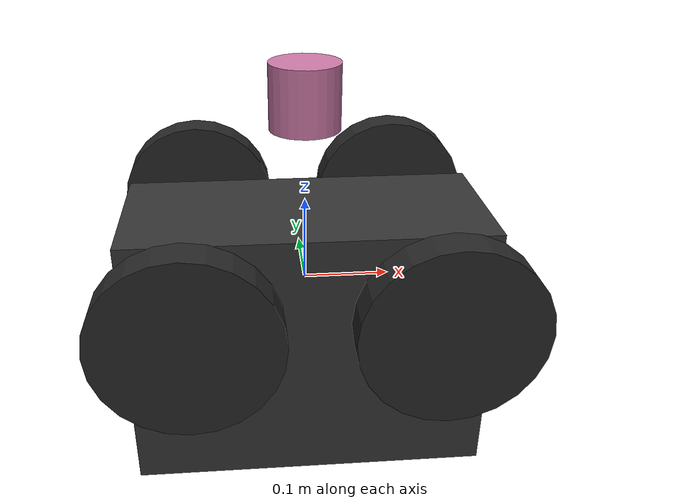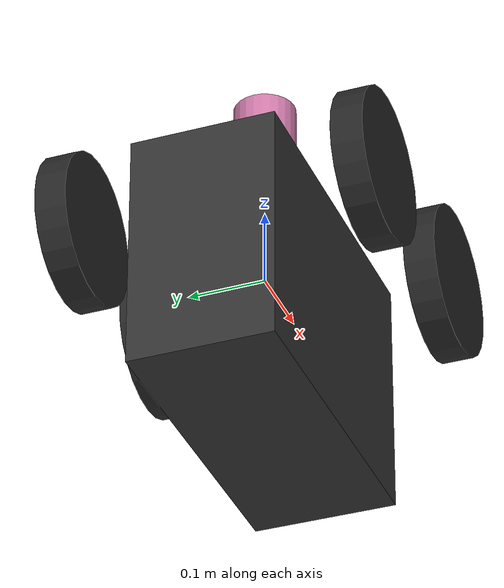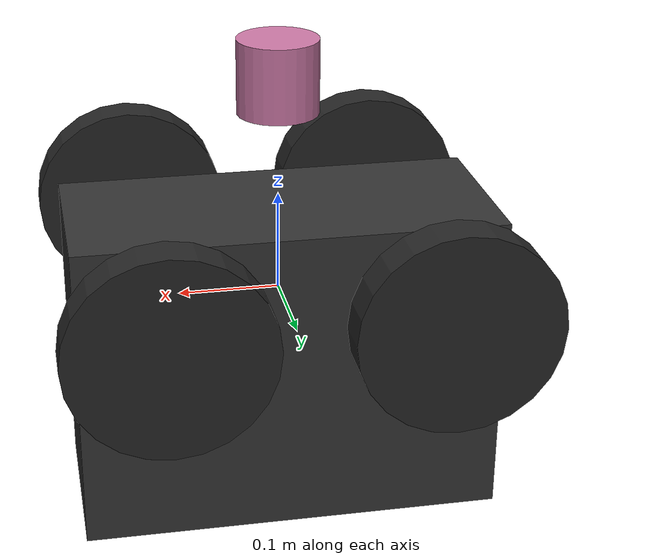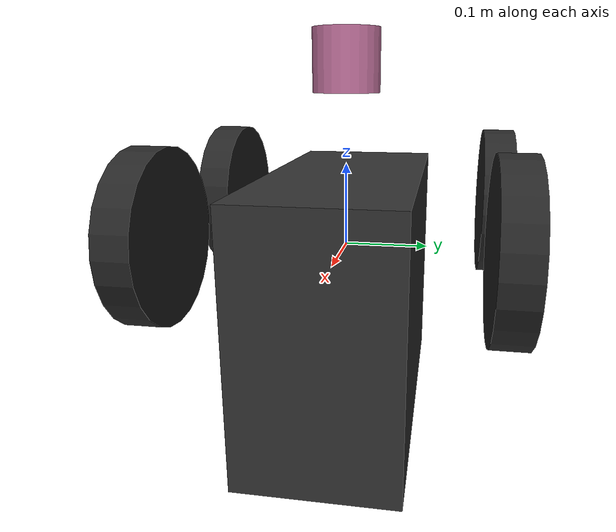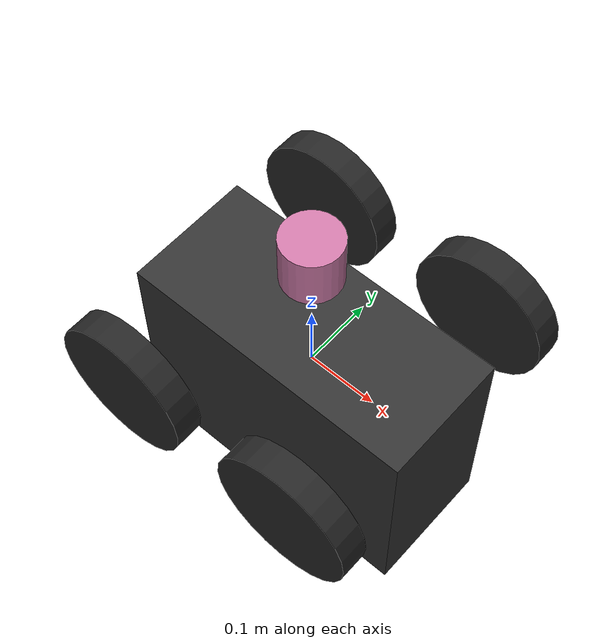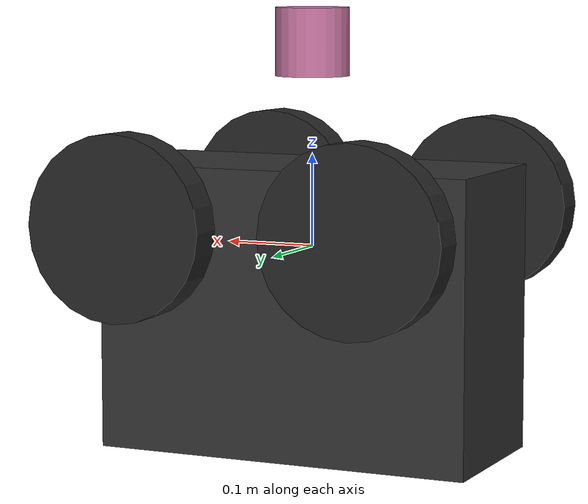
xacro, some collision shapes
<?xml version="1.0"?>
<robot name="rover" xmlns:xacro="http://www.ros.org/wiki/xacro">
  <xacro:property name="PI" value="3.1415926535897931" />

  <xacro:property name="wheelbase" value="0.262" />
  <xacro:property name="track" value="0.37559" />
  <xacro:property name="wheel_vertical_offset" value="0.0345" />
  <xacro:property name="footprint_vertical_offset" value="-0.0655" />

  <xacro:property name="wheel_radius" value="0.098" />
  <xacro:property name="wheel_width" value="0.040" />

  <xacro:property name="chassis_length" value="0.420" />
  <xacro:property name="chassis_width" value="0.310" />
  <xacro:property name="chassis_height" value="0.184" />

  <xacro:property name="dummy_inertia" value="1e-09"/>

  <xacro:property name="mount_spacing" value="0.120" />

  <material name="dark_grey"><color rgba="0.2 0.2 0.2 1.0" /></material>
  <material name="light_grey"><color rgba="0.4 0.4 0.4 1.0" /></material>
  <material name="yellow"><color rgba="0.8 0.8 0.0 1.0" /></material>
  <material name="black"><color rgba="0.15 0.15 0.15 1.0" /></material>

  <xacro:macro name="wheel" params="prefix *joint_pose">

    <link name="${prefix}_wheel_link">
      <visual>
        <origin xyz="0 0 0" rpy="${PI/2} 0 0"/>
        <geometry>
          <cylinder radius="${wheel_radius}" length="${wheel_width}"/>
        </geometry>
        <material name="black" />
      </visual>
      <collision>
        <origin xyz="0 0 0" rpy="${PI/2} 0 0"/>
        <geometry>
          <cylinder radius="${wheel_radius}" length="${wheel_width}"/>
        </geometry>
      </collision>
      <inertial>
        <origin xyz="0 0 0" rpy="0 0 0"/>
        <mass value="0.477"/>
        <inertia
          ixx="0.0013" ixy="0" ixz="0"
          iyy="0.0024" iyz="0"
          izz="0.0013"/>
      </inertial>
    </link>

    <gazebo reference="${prefix}_wheel_link">
      <material>Gazebo/DarkGrey</material>
      <selfCollide>false</selfCollide>
      <mu1 value="0.5"/>
      <mu2 value="0.5"/>
      <kp value="10000000.0" />
      <kd value="1" />
      <fdir1 value="1 0 0"/>
    </gazebo>

    <joint name="${prefix}_wheel" type="continuous">
      <parent link="chassis_link"/>
      <child link="${prefix}_wheel_link" />
      <xacro:insert_block name="joint_pose" />
      <axis xyz="0 1 0" />
    </joint>

    <!-- In reality, Jackal has only two motors, one per side. However, it's more
         straightforward for Gazebo to simulate as if there's an actuator per wheel. -->
    <transmission name="${prefix}_wheel_trans">
      <type>transmission_interface/SimpleTransmission</type>
      <joint name="${prefix}_wheel">
        <hardwareInterface>hardware_interface/VelocityJointInterface</hardwareInterface>
      </joint>
      <actuator name="${prefix}_actuator">
        <mechanicalReduction>1</mechanicalReduction>
      </actuator>
    </transmission>
  </xacro:macro>

  <xacro:wheel prefix="front_left">
    <origin xyz="${wheelbase/2} ${track/2} ${wheel_vertical_offset}" rpy="0 0 0" />
  </xacro:wheel>
  <xacro:wheel prefix="front_right">
    <origin xyz="${wheelbase/2} ${-track/2} ${wheel_vertical_offset}" rpy="0 0 0" />
  </xacro:wheel>
  <xacro:wheel prefix="rear_left">
    <origin xyz="${-wheelbase/2} ${track/2} ${wheel_vertical_offset}" rpy="0 0 0" />
  </xacro:wheel>
  <xacro:wheel prefix="rear_right">
    <origin xyz="${-wheelbase/2} ${-track/2} ${wheel_vertical_offset}" rpy="0 0 0" />
  </xacro:wheel>

  <link name="base_link"></link>

  <joint name="base_link_joint" type="fixed">
    <origin xyz="0 0 0" rpy="0 0 0" />
    <parent link="base_link"/>
    <child link="chassis_link" />
  </joint>

  <link name="chassis_link">
    <visual>
      <origin xyz="0 0 ${footprint_vertical_offset}" rpy="${PI/2} 0 0"/>
      <geometry>
        <box size="${chassis_length} ${chassis_width} ${chassis_height}"/>
      </geometry>
      <material name="dark_grey" />
    </visual>
    <collision>
      <origin xyz="0 0 ${chassis_height/2}"/>
      <geometry>
        <box size="${chassis_length} ${chassis_width} ${chassis_height}"/>
      </geometry>
    </collision>
    <inertial>
      <!-- Center of mass -->
      <origin xyz="0.012  0.002 0.067" rpy="0 0 0"/>
      <mass value="16.523"/>
      <!-- Moments of inertia: ( chassis without wheels ) -->
      <inertia
        ixx="0.3136" ixy="-0.0008" ixz="0.0164"
        iyy="0.3922" iyz="-0.0009"
        izz="0.4485"/>
      </inertial>
  </link>

  <!-- Bring in simulation data for Gazebo. -->
  <xacro:include filename="$(find rover_description)/urdf/rover.gazebo" />

  <xacro:include filename="$(find rover_description)/urdf/OS1-64.urdf.xacro"/>
  <xacro:OS1-64 parent="chassis_link" name="os1_sensor" hz="10" samples="220">
    <origin xyz="0 0 ${chassis_height}" rpy="0 0 0" />
  </xacro:OS1-64>

</robot>

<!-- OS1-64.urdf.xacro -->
<robot xmlns:xacro="http://www.ros.org/wiki/xacro" name="OS1-64">
  <xacro:property name="M_PI" value="3.1415926535897931" />
  <xacro:macro name="OS1-64" params="*origin parent:=base_link name:=os1_sensor topic_points:=/os1_cloud_node/points topic_imu:=/os1_cloud_node/imu hz:=10 lasers:=64 samples:=512 min_range:=0.9 max_range:=75.0 noise:=0.008 min_angle:=-${M_PI} max_angle:=${M_PI} lidar_link:=os1_lidar imu_link:=os1_imu vfov_min:=-.26 vfov_max:=.26">

    <joint name="${name}_mount_joint" type="fixed">
      <xacro:insert_block name="origin" />
      <parent link="${parent}"/>
      <child link="${name}"/>
    </joint>

    <link name="${name}">
      <inertial>
         <mass value="0.33"/>
         <origin xyz="0 0 0.0365" rpy="0 0 0" />
         <inertia ixx="0.000241148" ixy="0" ixz="0"
          iyy="0.000241148" iyz="0" izz="0.000264"/>
      </inertial>
      <collision name="base_collision">
         <origin xyz="0 0 0.0365" rpy="0 0 0" />
         <geometry>
 	        <cylinder radius="0.04" length="0.073"/>
         </geometry>
      </collision>
      <visual name="base_visual">
         <origin xyz="0 0 0.0" rpy="0 0 1.5707" />
         <geometry>
	         <mesh filename="package://rover_description/meshes/os1_64.dae" />
         </geometry>
      </visual>
    </link>

    <link name="${imu_link}" />

    <link name="${lidar_link}" />

    <joint name="${name}_imu_link_joint" type="fixed">
      <parent link="${name}" />
      <child link="${imu_link}" />
      <origin xyz="0.006253 -0.011775 0.007645" rpy="0 0 0" />
    </joint>
    <gazebo reference="${imu_link}">
    </gazebo>

    <joint name="${name}_lidar_link_joint" type="fixed">
      <parent link="${name}" />
      <child link="${lidar_link}" />
      <origin xyz="0.0 0.0 0.03618" rpy="0 0 0" />
    </joint>

    <!-- Gazebo requires the ouster_gazebo_plugins package -->
    <gazebo reference="${name}">
        <sensor type="ray" name="${name}-OS1-64">
          <pose>0 0 0 0 0 0</pose>
          <visualize>false</visualize>
          <update_rate>${hz}</update_rate>
          <ray>
            <scan>
              <horizontal>
                <samples>${samples}</samples>
                <resolution>1</resolution>
                <min_angle>${min_angle}</min_angle>
                <max_angle>${max_angle}</max_angle>
              </horizontal>
              <vertical>
                <samples>${lasers}</samples>
                <resolution>1</resolution>
                <min_angle>${vfov_min}</min_angle>
                <max_angle>${vfov_max}</max_angle>
              </vertical>
            </scan>
            <range>
              <min>${min_range}</min>
              <max>${max_range}</max>
              <resolution>0.03</resolution>
            </range>
          </ray>
          <plugin name="gazebo_ros_laser_controller" filename="libgazebo_ros_ouster_laser.so">
            <topicName>${topic_points}</topicName>
            <frameName>${lidar_link}</frameName>
            <min_range>${min_range}</min_range>
            <max_range>${max_range}</max_range>
            <gaussianNoise>${noise}</gaussianNoise>
          </plugin>
        </sensor>
    </gazebo>

    <!-- IMU -->
  <gazebo>
    <plugin name="imu_controller" filename="libhector_gazebo_ros_imu.so">
      <robotNamespace>/</robotNamespace>
      <updateRate>100.0</updateRate>
      <bodyName>${imu_link}</bodyName>
      <topicName>${topic_imu}</topicName>
      <accelDrift>0.005 0.005 0.005</accelDrift>
      <accelGaussianNoise>0.005 0.005 0.005</accelGaussianNoise>
      <rateDrift>0.005 0.005 0.005 </rateDrift>
      <rateGaussianNoise>0.005 0.005 0.005 </rateGaussianNoise>
      <headingDrift>0.005</headingDrift>
      <headingGaussianNoise>0.005</headingGaussianNoise>
    </plugin>
  </gazebo>

  </xacro:macro>
</robot>
